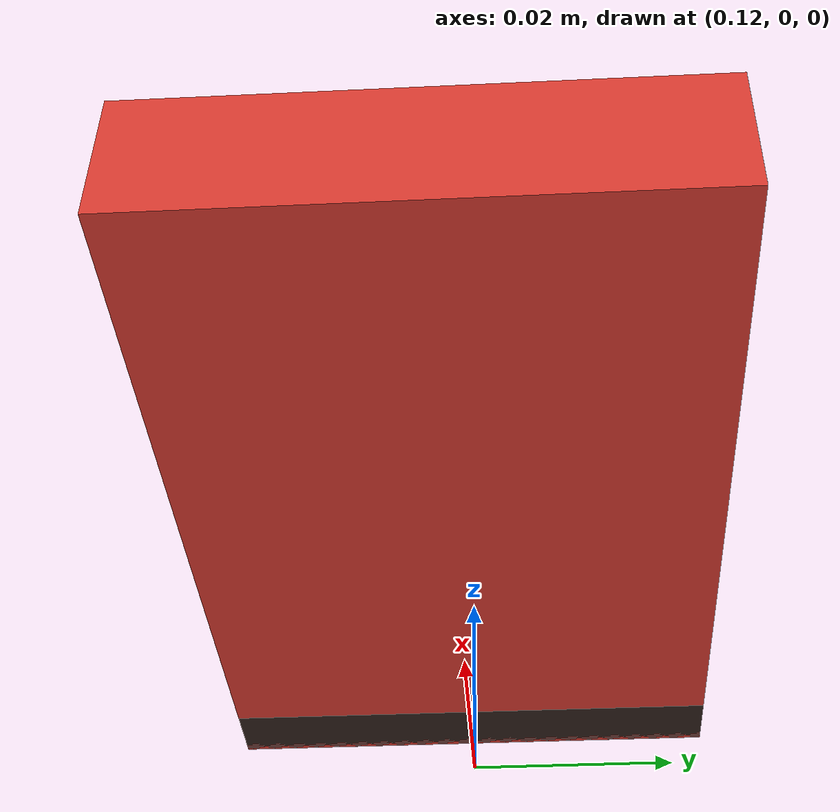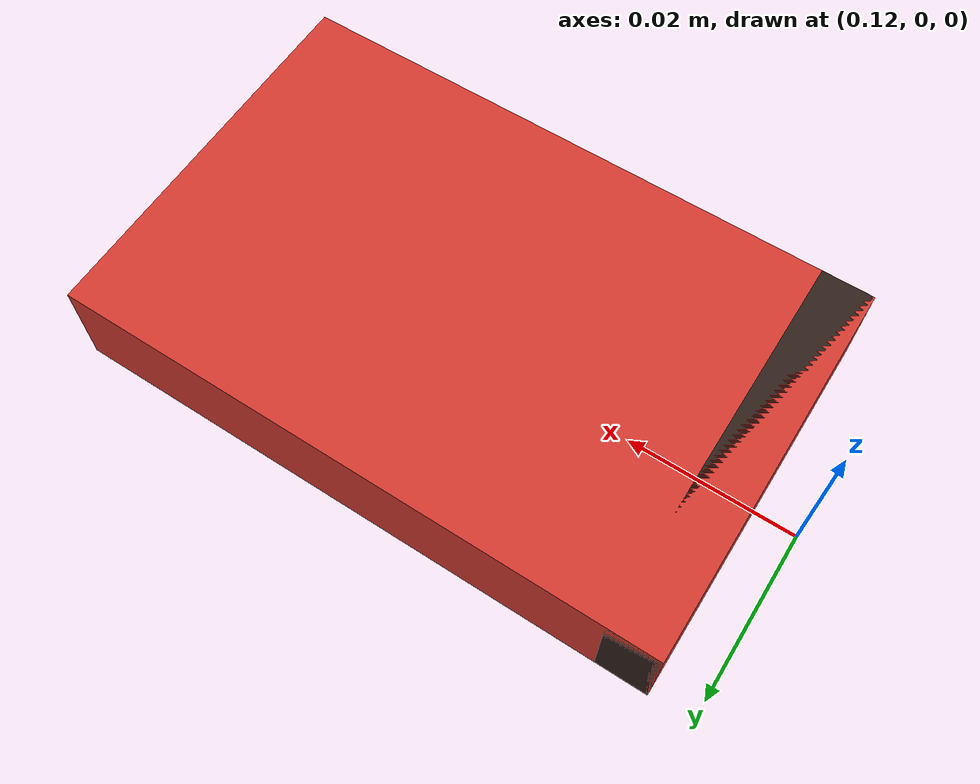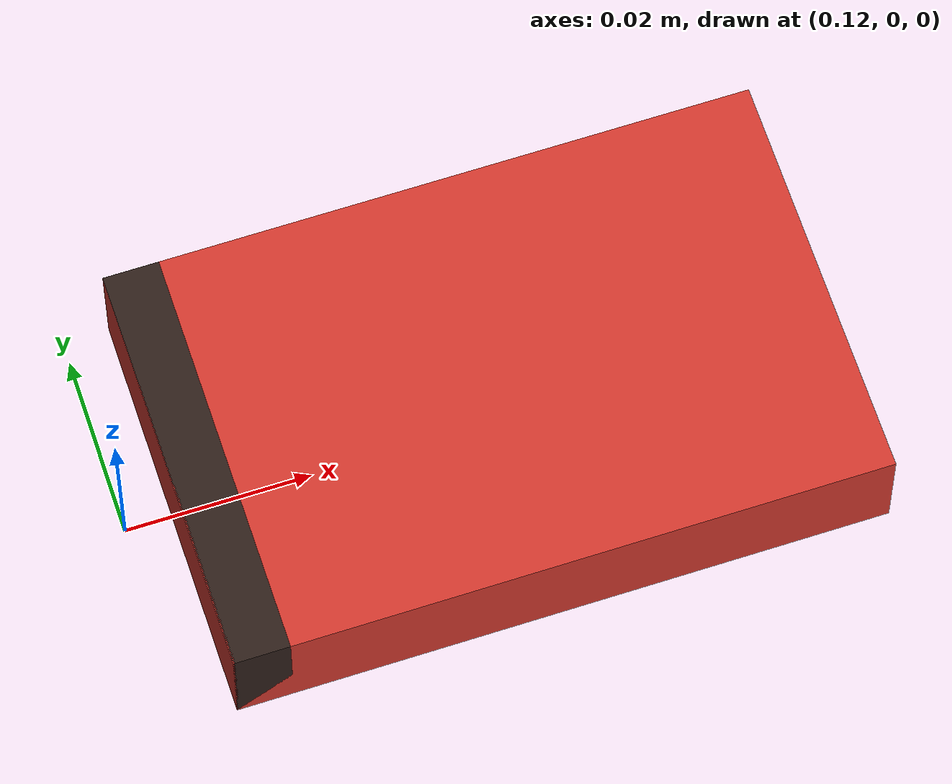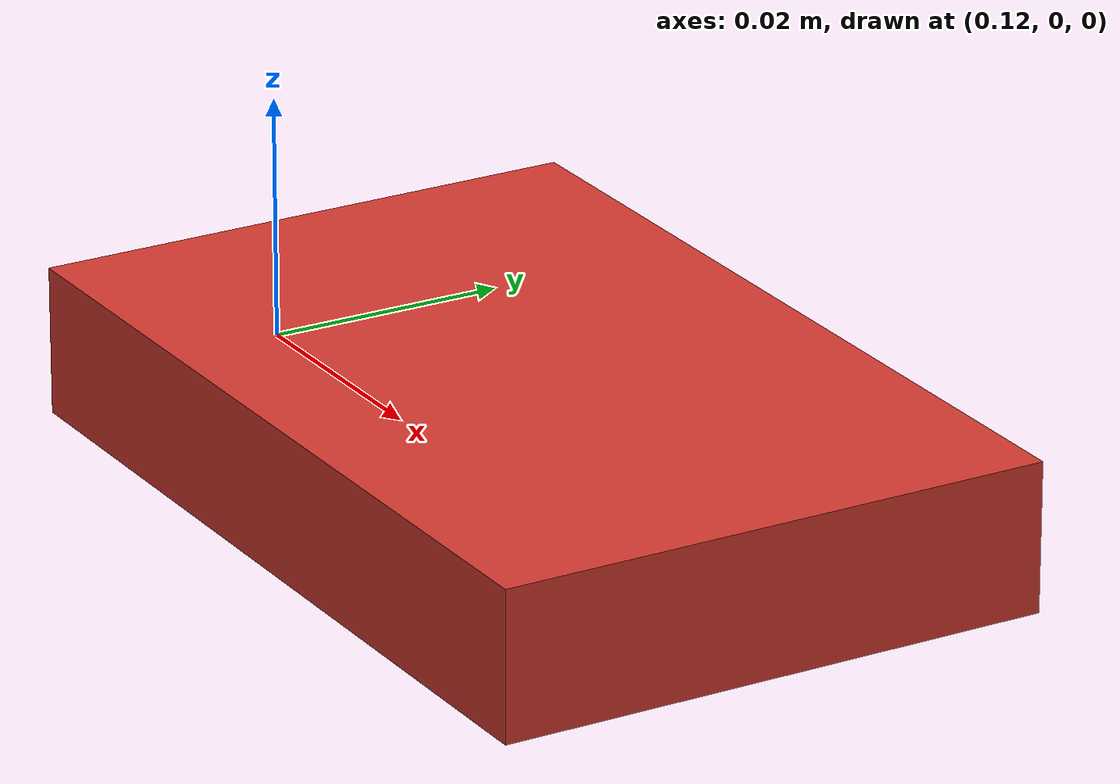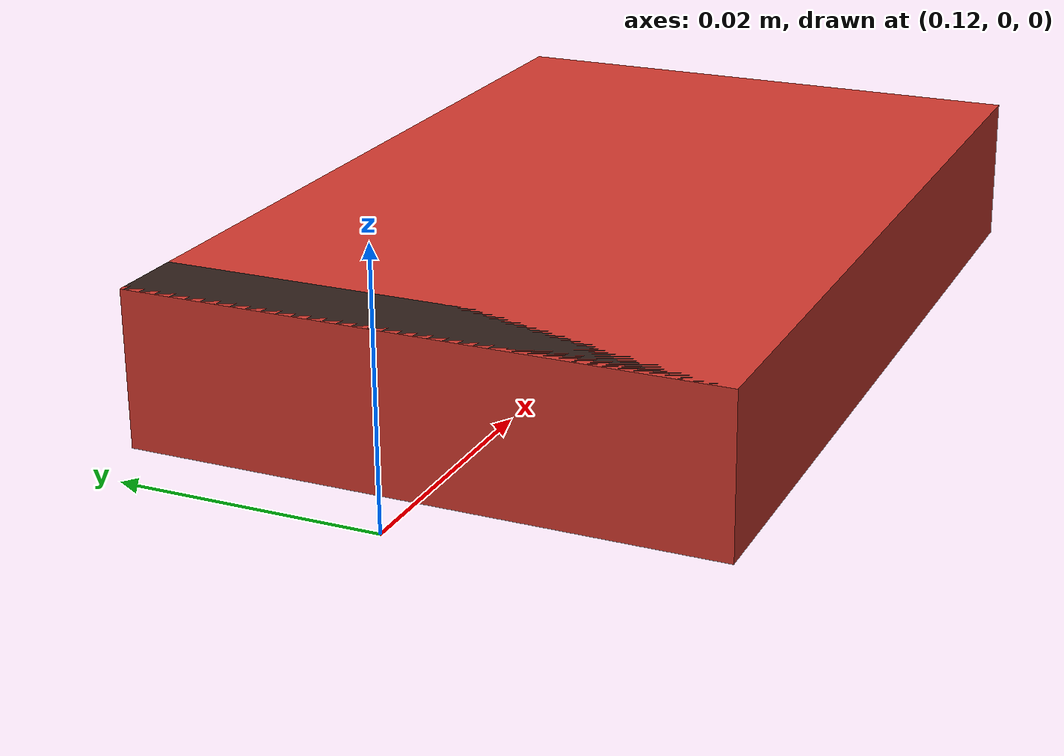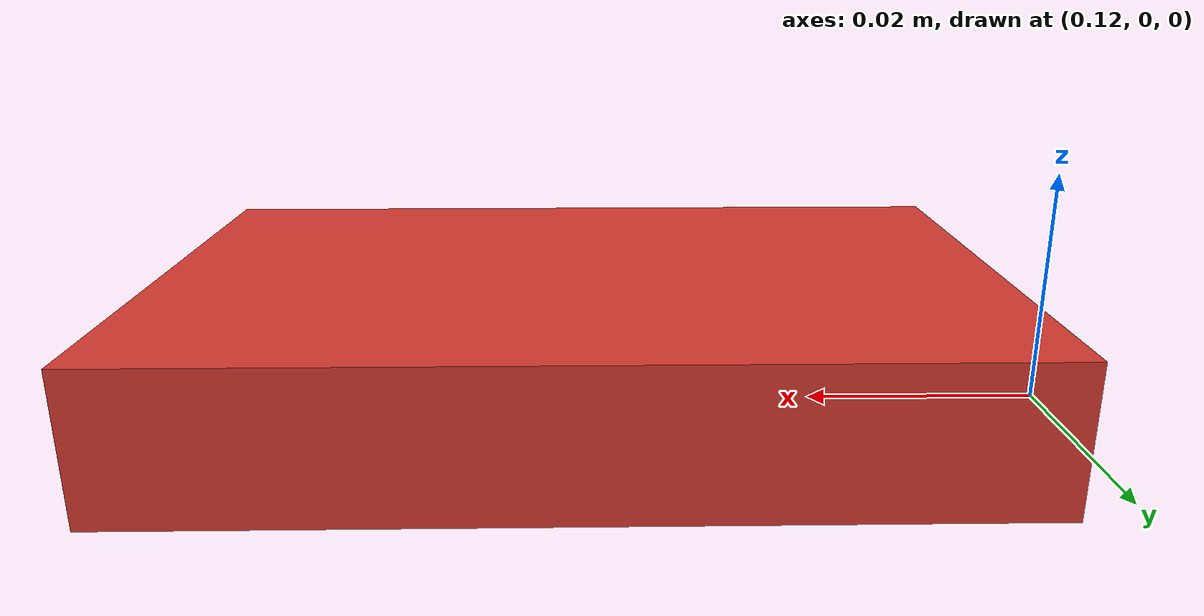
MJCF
<mujoco model="courage_book">
    <compiler angle="radian" autolimits="true"/>

    <asset>
        <material name="book_cover" rgba="0.82 0.22 0.18 1"/>
        <material name="book_pages" rgba="0.93 0.88 0.74 1"/>
        <material name="book_spine" rgba="0.18 0.12 0.10 1"/>
    </asset>

    <worldbody>
        <!-- Duck-scale paperback (~7 × 4.5 × 1.2 cm, 40 g). Real book shrunk
             to something a 25 cm biped can actually pick up with its beak. -->
        <body name="book" pos="0.16 0 0.006">
            <freejoint name="book_free"/>
            <inertial pos="0 0 0" mass="0.04" diaginertia="7.2e-6 1.7e-5 2.3e-5"/>
            <geom type="box" name="book_cover" size="0.035 0.0225 0.006"
                  material="book_cover" friction="1.2 0.01 0.001"/>
            <geom type="box" name="book_pages" size="0.033 0.020 0.0055"
                  pos="0.001 0 0" material="book_pages" contype="0" conaffinity="0"/>
            <geom type="box" name="book_spine" size="0.003 0.0225 0.006"
                  pos="-0.032 0 0" material="book_spine" contype="0" conaffinity="0"/>
        </body>
    </worldbody>
</mujoco>
